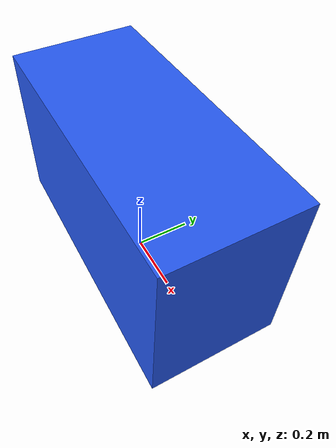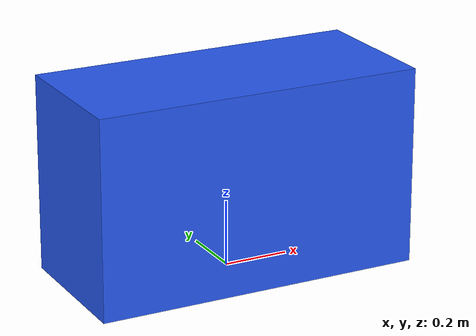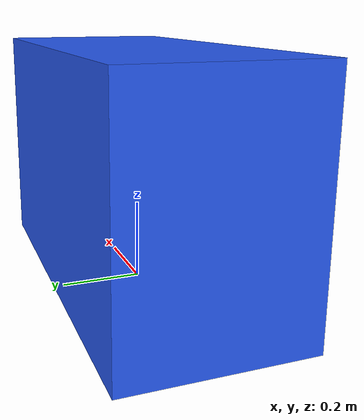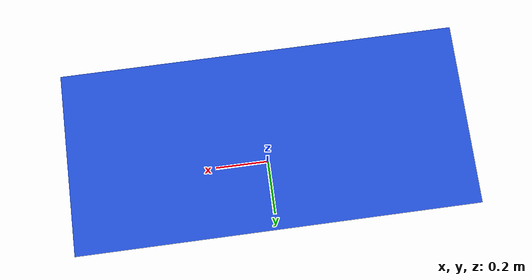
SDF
<?xml version="1.0"?>
<sdf version="1.9">
  <model name="imperative_dynamic_long_box">
    <pose>0 0 0.30 0 0 0</pose>
    <link name="link">
      <gravity>false</gravity>
      <kinematic>true</kinematic>
      <inertial><mass>100.0</mass><inertia><ixx>3.0</ixx><iyy>3.0</iyy><izz>3.0</izz></inertia></inertial>
      <collision name="collision">
        <geometry><box><size>1.00 0.45 0.60</size></box></geometry>
      </collision>
      <visual name="visual">
        <geometry><box><size>1.00 0.45 0.60</size></box></geometry>
        <material><ambient>0.15 0.35 0.95 1</ambient><diffuse>0.15 0.35 0.95 1</diffuse></material>
      </visual>
    </link>
    <plugin filename="ignition-gazebo-velocity-control-system"
            name="ignition::gazebo::systems::VelocityControl"/>
  </model>
</sdf>
